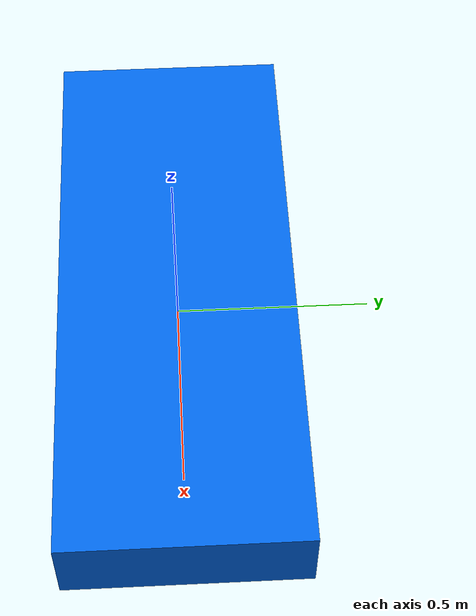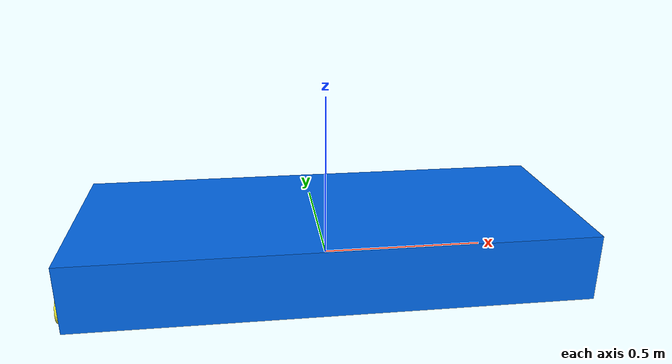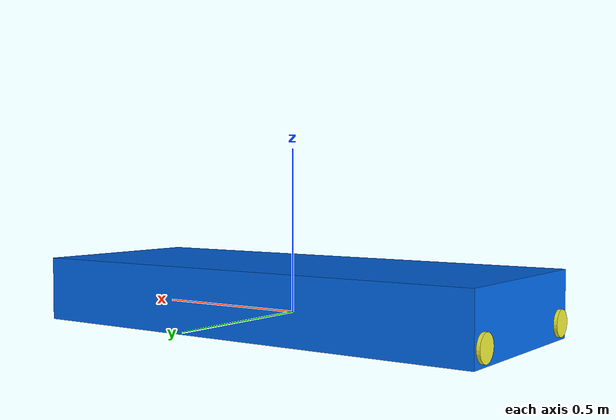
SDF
<?xml version="1.0"?>
<sdf version="1.9">
  <model name="beatnaut">

    <!-- Pose initiale dans le monde : légèrement au-dessus de l'eau -->
    <pose>0 0 0.05 0 0 0</pose>

    <!-- Permet au modèle de bouger librement dans la simulation -->
    <static>false</static>

    <link name="hull">

      <!--
        INERTIAL — Propriétés physiques
        Ces valeurs déterminent comment le bateau réagit aux forces.
        Une inertie incorrecte rend la simulation instable !
      -->
      <inertial>
        <mass>10.0</mass>  <!-- kg -->
        <inertia>
          <!-- Moments d'inertie (voir calcul en tête de fichier) -->
          <ixx>0.367</ixx>   <!-- Résistance aux rotations roll (tangage latéral) -->
          <ixy>0</ixy>       <!-- Produits d'inertie = 0 (symétrie parfaite) -->
          <ixz>0</ixz>
          <iyy>1.908</iyy>   <!-- Résistance aux rotations pitch (tangage avant/arrière) -->
          <iyz>0</iyz>
          <izz>2.175</izz>   <!-- Résistance aux rotations yaw (rotation horizontale) -->
        </inertia>
        <!-- Centre de masse légèrement sous le centre géométrique pour la stabilité -->
        <pose>0 0 -0.02 0 0 0</pose>
      </inertial>

      <!--
        VISUAL — Apparence 3D dans Gazebo
        Ce que tu vois dans le simulateur. Peut être plus détaillé que la collision.
      -->
      <visual name="hull_visual">
        <geometry>
          <box>
            <size>1.50 0.60 0.20</size>  <!-- longueur x largeur x hauteur en mètres -->
          </box>
        </geometry>
        <material>
          <ambient>0.0 0.3 0.8 1.0</ambient>   <!-- Couleur ambiante bleue -->
          <diffuse>0.0 0.4 0.9 1.0</diffuse>   <!-- Couleur diffuse bleue marine -->
          <specular>0.5 0.5 0.5 1.0</specular> <!-- Reflet brillant -->
        </material>
      </visual>

      <!--
        COLLISION — Forme utilisée pour le calcul des collisions
        En général identique au visual, mais peut être simplifiée
        pour de meilleures performances de simulation.
      -->
      <collision name="hull_collision">
        <geometry>
          <box>
            <size>1.50 0.60 0.20</size>
          </box>
        </geometry>
        <!-- Surface de frottement et rebond (valeurs pour un bateau sur eau) -->
        <surface>
          <friction>
            <ode>
              <mu>0.1</mu>   <!-- Coefficient de frottement faible (surface mouillée) -->
              <mu2>0.1</mu2>
            </ode>
          </friction>
          <bounce>
            <restitution_coefficient>0.0</restitution_coefficient>  <!-- Pas de rebond -->
          </bounce>
        </surface>
      </collision>

      <sensor name="imu_sensor" type="imu">
        <pose>0 0 0.05 0 0 0</pose>  <!-- Monté légèrement au-dessus du centre -->
        <always_on>true</always_on>
        <update_rate>100</update_rate>  <!-- Hz : fréquence de mesure -->
        <imu>
          <angular_velocity>
            <x>
              <noise type="gaussian">
                <!-- Bruit réaliste pour simuler une vraie IMU -->
                <mean>0.0</mean>
                <stddev>0.009</stddev>  <!-- 9 mdeg/s de bruit typique -->
              </noise>
            </x>
            <y>
              <noise type="gaussian">
                <mean>0.0</mean>
                <stddev>0.009</stddev>
              </noise>
            </y>
            <z>
              <noise type="gaussian">
                <mean>0.0</mean>
                <stddev>0.009</stddev>
              </noise>
            </z>
          </angular_velocity>
          <linear_acceleration>
            <x>
              <noise type="gaussian">
                <mean>0.0</mean>
                <stddev>0.196</stddev>  <!-- ~0.02g de bruit typique -->
              </noise>
            </x>
            <y>
              <noise type="gaussian">
                <mean>0.0</mean>
                <stddev>0.196</stddev>
              </noise>
            </y>
            <z>
              <noise type="gaussian">
                <mean>0.0</mean>
                <stddev>0.196</stddev>
              </noise>
            </z>
          </linear_acceleration>
        </imu>
        <plugin filename="gz-sim-imu-system"
                name="gz::sim::systems::Imu">
        </plugin>
        <!-- Topic Gazebo où les données IMU seront publiées -->
        <topic>/beatnaut/imu</topic>
      </sensor>

      <sensor name="navsat_sensor" type="navsat">
        <pose>0 0 0.08 0 0 0</pose>  <!-- Antenne GPS sur le dessus -->
        <always_on>true</always_on>
        <update_rate>10</update_rate>  <!-- Hz : GPS standard = 1-10 Hz -->
        <navsat>
          <position_sensing>
            <horizontal>
              <noise type="gaussian">
                <mean>0.0</mean>
                <stddev>0.5</stddev>  <!-- ±0.5m de précision (GPS civil standard) -->
              </noise>
            </horizontal>
            <vertical>
              <noise type="gaussian">
                <mean>0.0</mean>
                <stddev>1.0</stddev>  <!-- ±1m vertical (GPS moins précis verticalement) -->
              </noise>
            </vertical>
          </position_sensing>
          <velocity_sensing>
            <horizontal>
              <noise type="gaussian">
                <mean>0.0</mean>
                <stddev>0.1</stddev>  <!-- ±0.1 m/s de précision vitesse -->
              </noise>
            </horizontal>
          </velocity_sensing>
        </navsat>
        <plugin filename="gz-sim-navsat-system"
                name="gz::sim::systems::NavSat">
        </plugin>
        <!-- Topic Gazebo où les données GPS seront publiées -->
        <topic>/beatnaut/navsat</topic>
      </sensor>

    </link>
    <!-- Fin du link hull -->

    <link name="thruster_port">
      <pose>-0.70 0.25 -0.05 0 1.5708 0</pose>
      <!-- Rotation de 90° autour de Y pour que l'axe du cylindre
           soit aligné avec l'axe de propulsion (avant/arrière) -->

      <inertial>
        <mass>0.5</mass>  <!-- kg, poids du moteur + hélice -->
        <inertia>
          <!-- Inertie d'un petit cylindre de 0.5kg -->
          <ixx>0.001</ixx>
          <ixy>0</ixy>
          <ixz>0</ixz>
          <iyy>0.001</iyy>
          <iyz>0</iyz>
          <izz>0.001</izz>
        </inertia>
      </inertial>

      <visual name="thruster_port_visual">
        <geometry>
          <cylinder>
            <radius>0.04</radius>   <!-- 4 cm de rayon (représente l'hélice) -->
            <length>0.12</length>   <!-- 12 cm de long (tube du propulseur) -->
          </cylinder>
        </geometry>
        <material>
          <ambient>0.7 0.7 0.1 1.0</ambient>   <!-- Couleur jaune pour distinguer -->
          <diffuse>0.9 0.9 0.2 1.0</diffuse>
        </material>
      </visual>

      <collision name="thruster_port_collision">
        <geometry>
          <cylinder>
            <radius>0.04</radius>
            <length>0.12</length>
          </cylinder>
        </geometry>
      </collision>
    </link>

    <joint name="thruster_port_joint" type="fixed">
      <parent>hull</parent>              <!-- Pièce "parent" = la coque -->
      <child>thruster_port</child>       <!-- Pièce "enfant" = le moteur -->
    </joint>

    <link name="thruster_starboard">
      <pose>-0.70 -0.25 -0.05 0 1.5708 0</pose>

      <inertial>
        <mass>0.5</mass>
        <inertia>
          <ixx>0.001</ixx>
          <ixy>0</ixy>
          <ixz>0</ixz>
          <iyy>0.001</iyy>
          <iyz>0</iyz>
          <izz>0.001</izz>
        </inertia>
      </inertial>

      <visual name="thruster_starboard_visual">
        <geometry>
          <cylinder>
            <radius>0.04</radius>
            <length>0.12</length>
          </cylinder>
        </geometry>
        <material>
          <ambient>0.7 0.7 0.1 1.0</ambient>
          <diffuse>0.9 0.9 0.2 1.0</diffuse>
        </material>
      </visual>

      <collision name="thruster_starboard_collision">
        <geometry>
          <cylinder>
            <radius>0.04</radius>
            <length>0.12</length>
          </cylinder>
        </geometry>
      </collision>
    </link>

    <joint name="thruster_starboard_joint" type="fixed">
      <parent>hull</parent>
      <child>thruster_starboard</child>
    </joint>

    <plugin
      filename="gz-sim-buoyancy-system"
      name="gz::sim::systems::Buoyancy">
      <link_name>hull</link_name>
      <fluid_density>1000</fluid_density>
    </plugin>

    <plugin
      filename="gz-sim-hydrodynamics-system"
      name="gz::sim::systems::Hydrodynamics">
      <link_name>hull</link_name>
      <!-- Résistances linéaires -->
      <xDotU>-0.5</xDotU>
      <yDotV>-10.0</yDotV>
      <zDotW>-20.0</zDotW>
      <kDotP>-0.1</kDotP>
      <mDotQ>-0.5</mDotQ>
      <nDotR>-1.0</nDotR>
      <!-- Résistances quadratiques (proportionnelles à v²) -->
      <xUU>-5.0</xUU>
      <yVV>-50.0</yVV>
      <zWW>-100.0</zWW>
      <kPP>-0.1</kPP>
      <mQQ>-1.0</mQQ>
      <nRR>-5.0</nRR>
    </plugin>

    <plugin
      filename="gz-sim-thruster-system"
      name="gz::sim::systems::Thruster">
      <namespace>beatnaut</namespace>
      <joint_name>thruster_port_joint</joint_name>
      <thrust_coefficient>0.004</thrust_coefficient>  <!-- Kt -->
      <fluid_density>1000</fluid_density>             <!-- ρ eau douce -->
      <propeller_diameter>0.08</propeller_diameter>   <!-- D = 8 cm -->
      <velocity_control>true</velocity_control>
      <!-- Le topic sur lequel écouter les commandes -->
      <topic>/beatnaut/thruster/port/cmd</topic>
    </plugin>

    <plugin
      filename="gz-sim-thruster-system"
      name="gz::sim::systems::Thruster">
      <namespace>beatnaut</namespace>
      <joint_name>thruster_starboard_joint</joint_name>
      <thrust_coefficient>0.004</thrust_coefficient>
      <fluid_density>1000</fluid_density>
      <propeller_diameter>0.08</propeller_diameter>
      <velocity_control>true</velocity_control>
      <topic>/beatnaut/thruster/starboard/cmd</topic>
    </plugin>

  </model>
</sdf>
